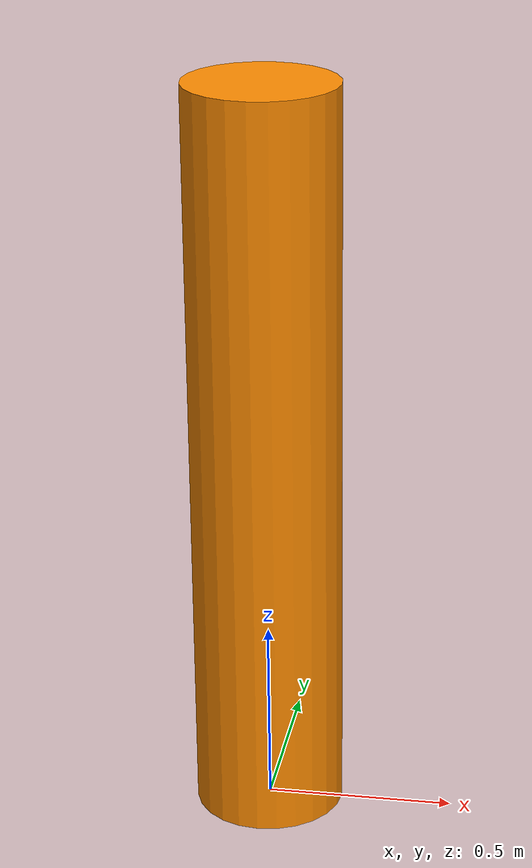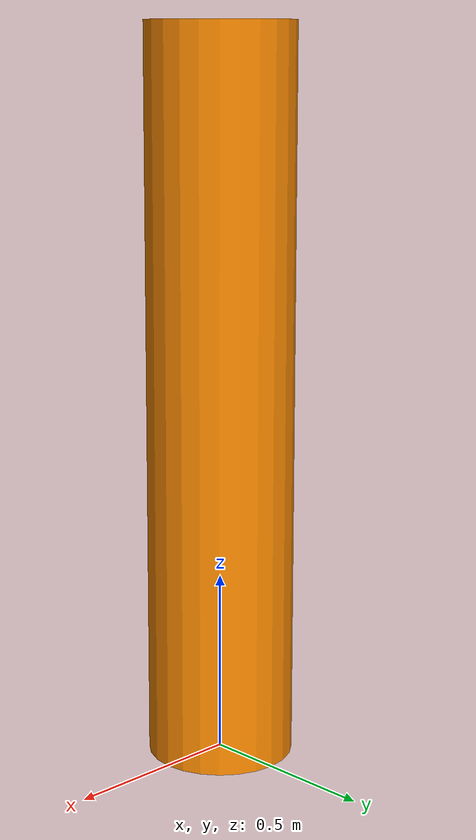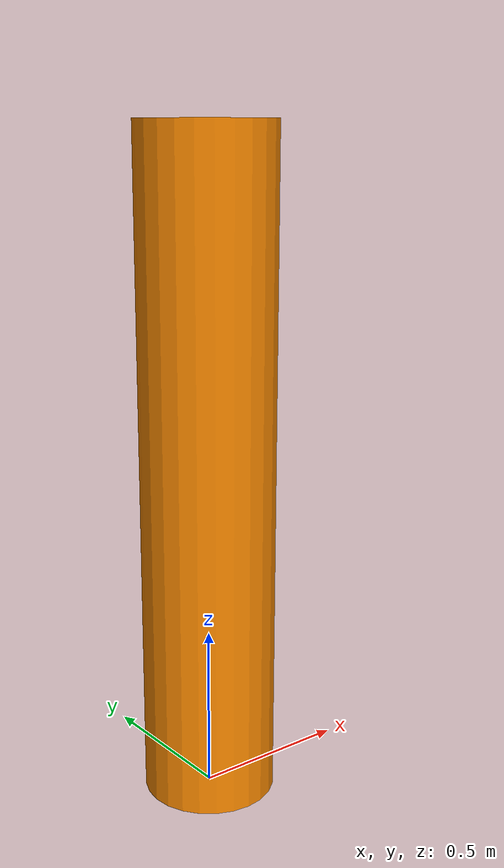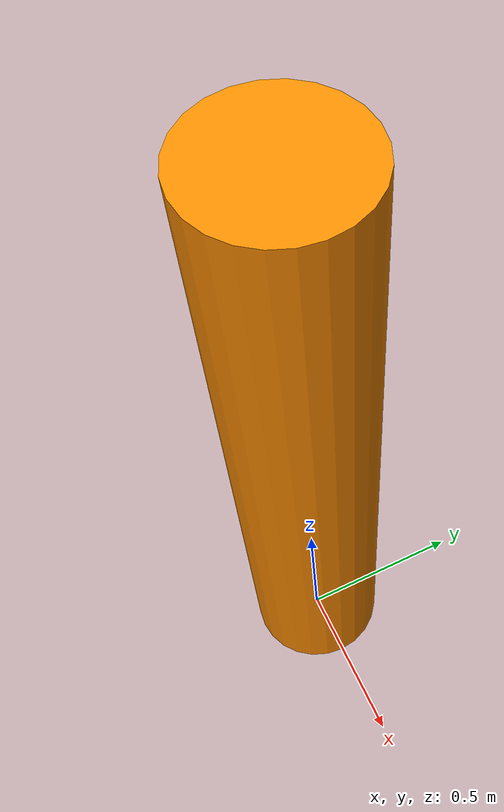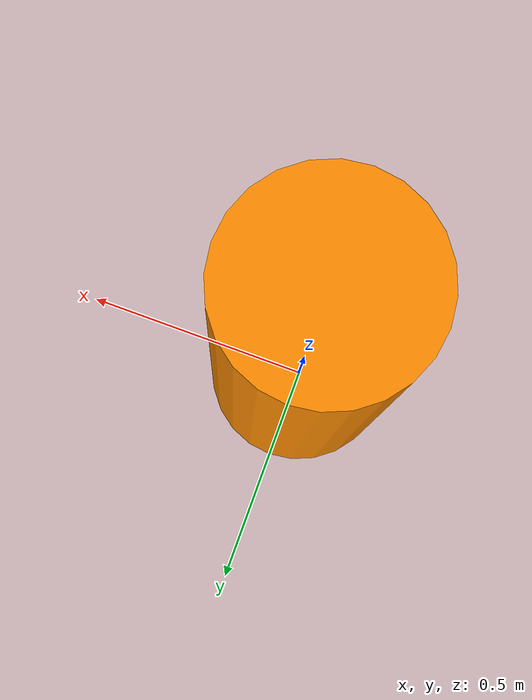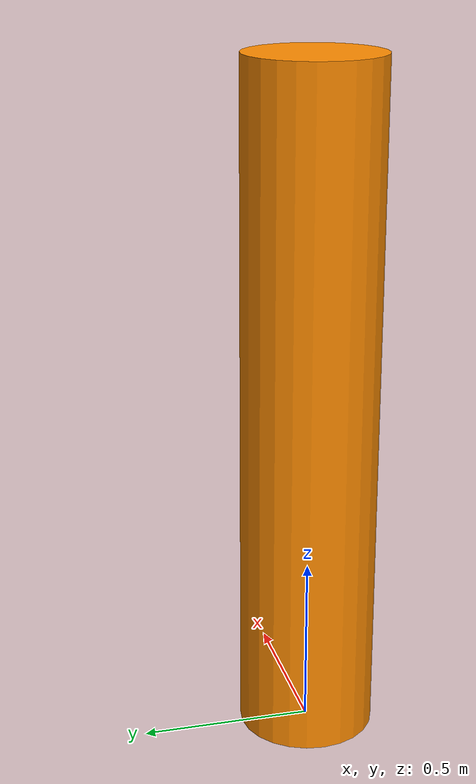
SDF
<?xml version='1.0'?>
<sdf version="1.4">
	<model name="orange_pole">
		<pose>0 0 1.0 0 0 0</pose>
		<static>true</static>
		<link name="link">
			<inertial>
				<mass>1.0</mass>
				<inertia> <!-- interias are tricky to compute -->
					<!-- http://answers.gazebosim.org/question/4372/the-inertia-matrix-explained/ -->
					<ixx>0.083</ixx>       <!-- for a box: ixx = 0.083 * mass * (y*y + z*z) -->
					<ixy>0.0</ixy>         <!-- for a box: ixy = 0 -->
					<ixz>0.0</ixz>         <!-- for a box: ixz = 0 -->
					<iyy>0.083</iyy>       <!-- for a box: iyy = 0.083 * mass * (x*x + z*z) -->
					<iyz>0.0</iyz>         <!-- for a box: iyz = 0 -->
					<izz>0.083</izz>       <!-- for a box: izz = 0.083 * mass * (x*x + y*y) -->
				</inertia>
			</inertial>
			<collision name="collision">
				<geometry>
					<cylinder>
						<radius>0.3</radius>
						<length>2.0</length>
					</cylinder>
				</geometry>
			</collision>
			<visual name="visual">
				<geometry>
					<cylinder>
						<radius>0.2</radius>
						<length>2.0</length>
					</cylinder>
				</geometry>
				<material>
					<ambient>1 0.55 0 1</ambient>
					<diffuse>1 0.55 0 1</diffuse>
					<specular>0.1 0.1 0.1 1</specular>
					<emissive>0 0 0 0</emissive>
				</material>
			</visual>
		</link>
	</model>
</sdf>
